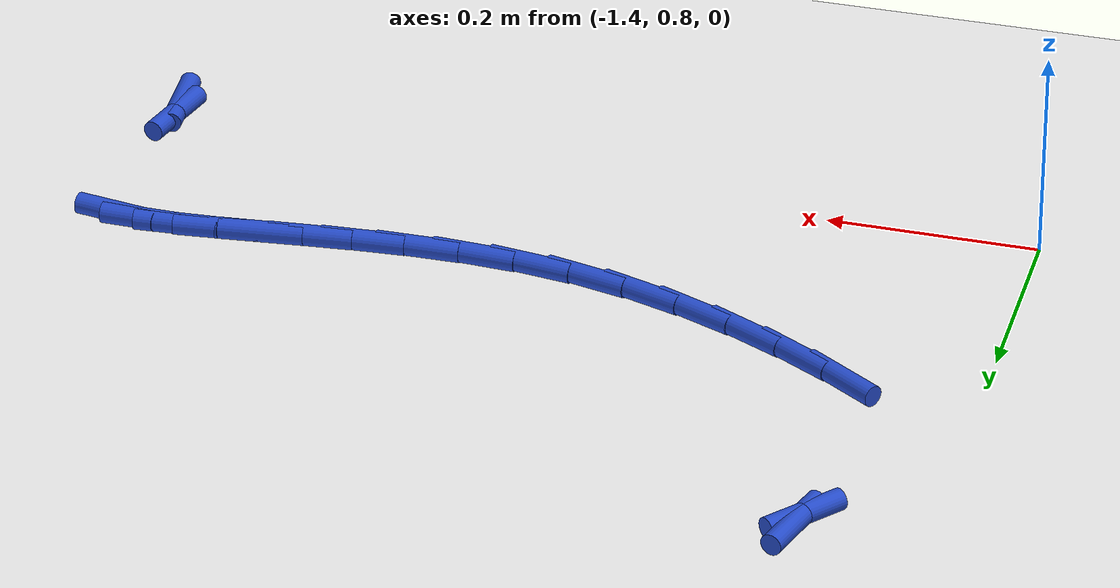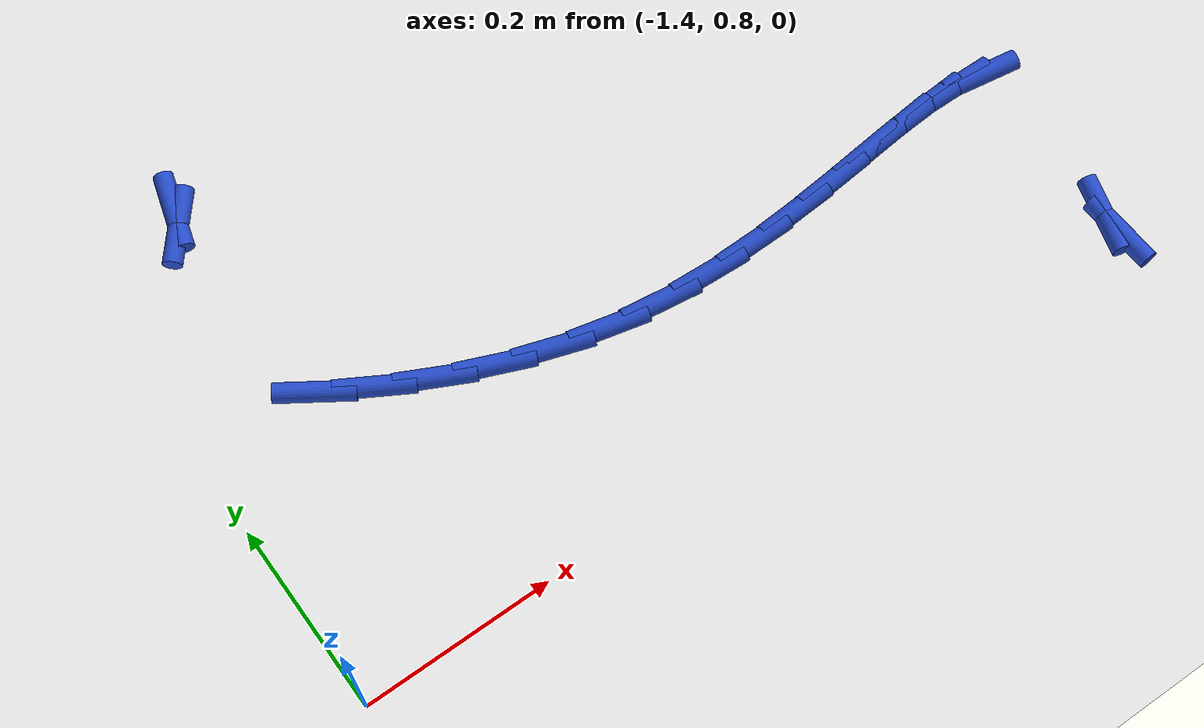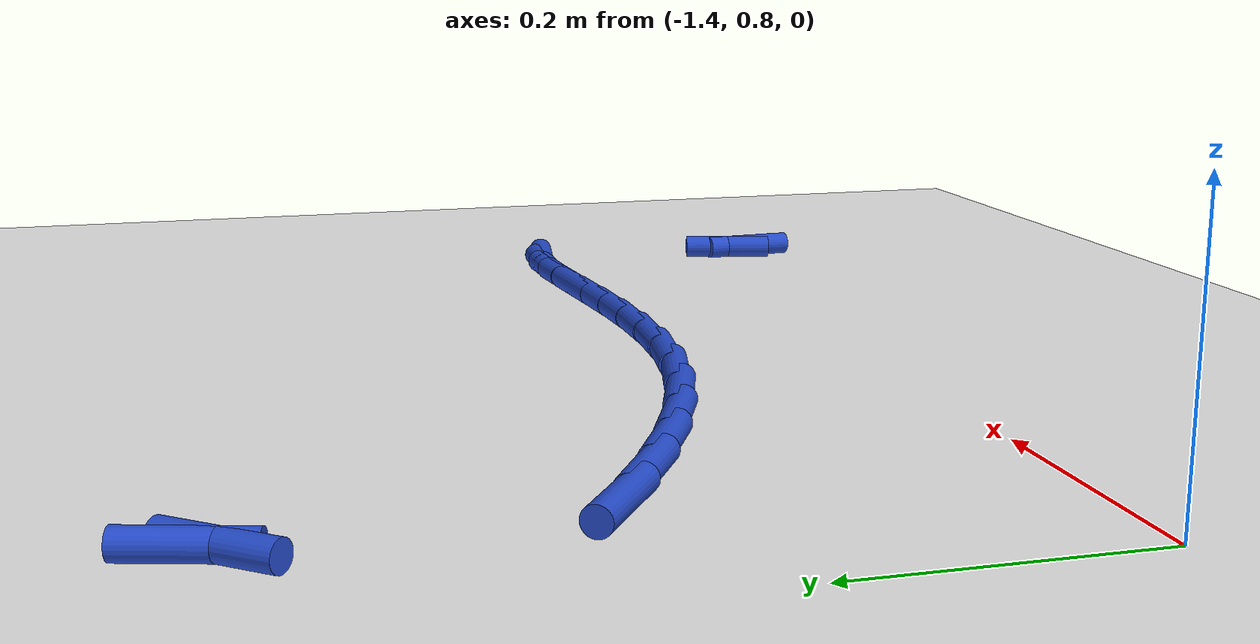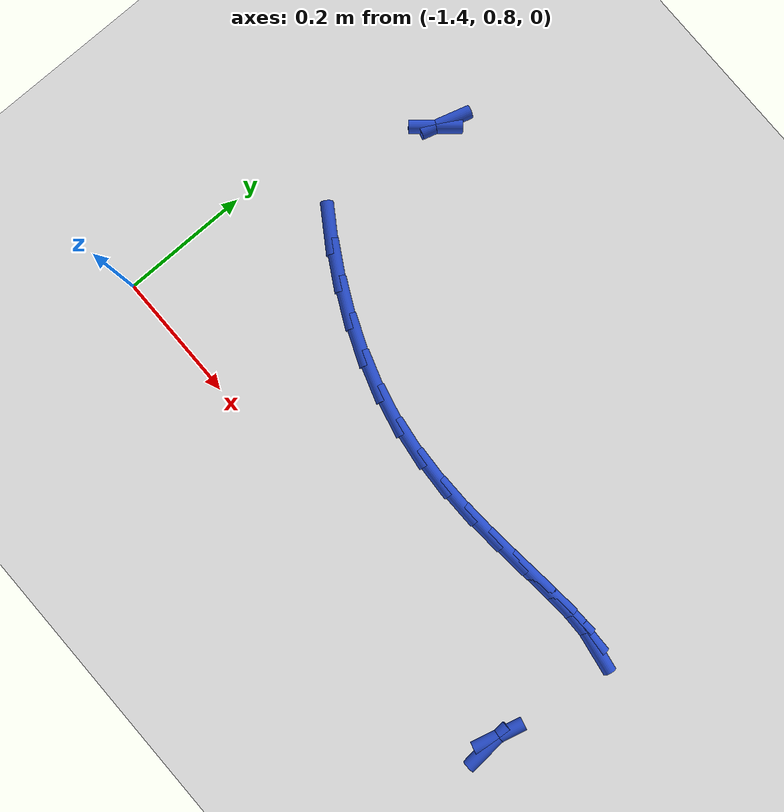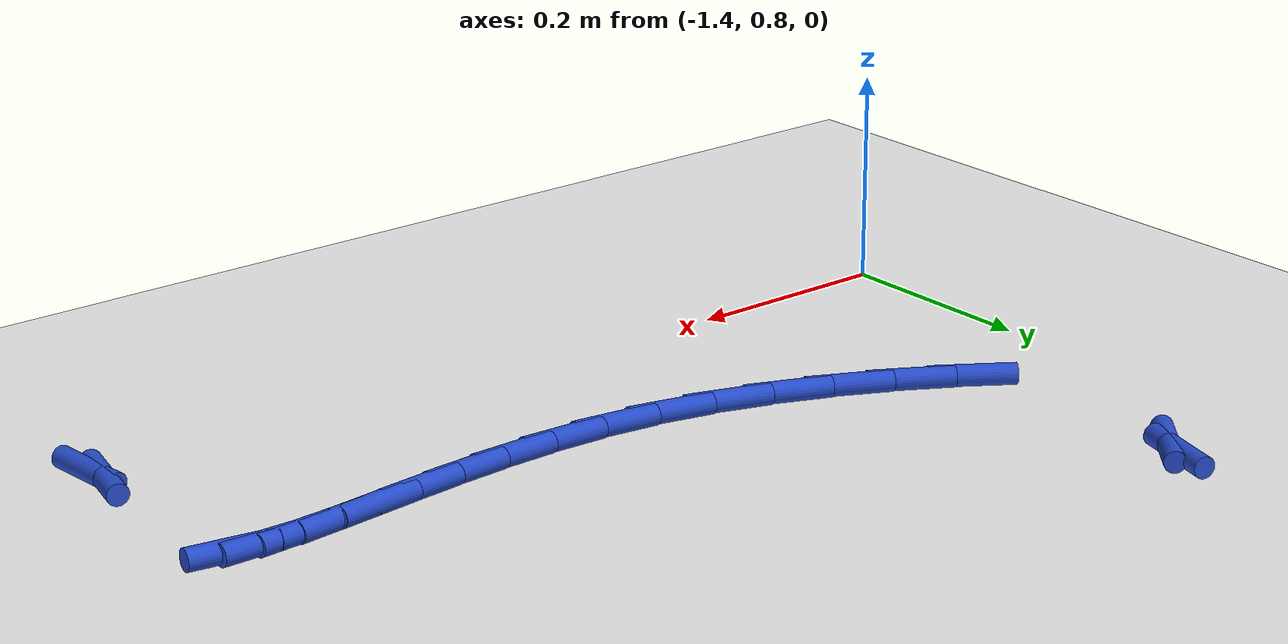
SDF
<sdf version="1.6">
 <world name="default">
  <model name="ground_plane">
   <static>1</static>
   <link name="link">
    <collision name="collision">
     <geometry><plane><normal>0 0 1</normal><size>100 100</size></plane></geometry>
     <surface><friction><ode><mu>100</mu><mu2>50</mu2></ode></friction></surface>
    </collision>
    <visual name="visual">
     <cast_shadows>0</cast_shadows>
     <geometry><plane><normal>0 0 1</normal><size>100 100</size></plane></geometry>
     <material>
      <script><uri>file://media/materials/scripts/gazebo.material</uri><name>Gazebo/WhiteGlow</name></script>
     </material>
    </visual>
   </link>
  </model>
  <model name="line">
   <link name="link_34">
    <pose>-0.5580923701969078 0.763494513922967 0.01 0 1.57 -1.4948324538092168</pose>
    <collision name="collision">
     <geometry><cylinder><radius>0.01</radius><length>0.08</length></cylinder></geometry>
    </collision>
    <visual name="visual">
     <material>
      <script><name>Gazebo/Blue</name><uri>file://media/materials/scripts/gazebo.material</uri></script>
     </material>
     <geometry><cylinder><radius>0.01</radius><length>0.08</length></cylinder></geometry>
    </visual>
   </link>
   <link name="link_35">
    <pose>-0.5597076829982736 0.7847178202460561 0.01 0 1.57 1.328714973944007</pose>
    <collision name="collision">
     <geometry><cylinder><radius>0.01</radius><length>0.08</length></cylinder></geometry>
    </collision>
    <visual name="visual">
     <material>
      <script><name>Gazebo/Blue</name><uri>file://media/materials/scripts/gazebo.material</uri></script>
     </material>
     <geometry><cylinder><radius>0.01</radius><length>0.08</length></cylinder></geometry>
    </visual>
   </link>
   <link name="link_42">
    <pose>-0.5646322320761914 0.9719019364678838 0.01 0 1.57 -0.1635095303750284</pose>
    <collision name="collision">
     <geometry><cylinder><radius>0.01</radius><length>0.08</length></cylinder></geometry>
    </collision>
    <visual name="visual">
     <material>
      <script><name>Gazebo/Blue</name><uri>file://media/materials/scripts/gazebo.material</uri></script>
     </material>
     <geometry><cylinder><radius>0.01</radius><length>0.08</length></cylinder></geometry>
    </visual>
   </link>
   <link name="link_43">
    <pose>-0.5914192939594306 0.9763213314684609 0.01 0 1.57 -0.016165628537023982</pose>
    <collision name="collision">
     <geometry><cylinder><radius>0.01</radius><length>0.08</length></cylinder></geometry>
    </collision>
    <visual name="visual">
     <material>
      <script><name>Gazebo/Blue</name><uri>file://media/materials/scripts/gazebo.material</uri></script>
     </material>
     <geometry><cylinder><radius>0.01</radius><length>0.08</length></cylinder></geometry>
    </visual>
   </link>
   <link name="link_44">
    <pose>-0.624020508663401 0.9768483965082254 0.01 0 1.57 0.06086672252184156</pose>
    <collision name="collision">
     <geometry><cylinder><radius>0.01</radius><length>0.08</length></cylinder></geometry>
    </collision>
    <visual name="visual">
     <material>
      <script><name>Gazebo/Blue</name><uri>file://media/materials/scripts/gazebo.material</uri></script>
     </material>
     <geometry><cylinder><radius>0.01</radius><length>0.08</length></cylinder></geometry>
    </visual>
   </link>
   <link name="link_45">
    <pose>-0.6617673035108715 0.9745480313529493 0.01 0 1.57 0.09592754155805806</pose>
    <collision name="collision">
     <geometry><cylinder><radius>0.01</radius><length>0.08</length></cylinder></geometry>
    </collision>
    <visual name="visual">
     <material>
      <script><name>Gazebo/Blue</name><uri>file://media/materials/scripts/gazebo.material</uri></script>
     </material>
     <geometry><cylinder><radius>0.01</radius><length>0.08</length></cylinder></geometry>
    </visual>
   </link>
   <link name="link_46">
    <pose>-0.7039911058246098 0.9704851357684028 0.01 0 1.57 0.10305088690284292</pose>
    <collision name="collision">
     <geometry><cylinder><radius>0.01</radius><length>0.08</length></cylinder></geometry>
    </collision>
    <visual name="visual">
     <material>
      <script><name>Gazebo/Blue</name><uri>file://media/materials/scripts/gazebo.material</uri></script>
     </material>
     <geometry><cylinder><radius>0.01</radius><length>0.08</length></cylinder></geometry>
    </visual>
   </link>
   <link name="link_47">
    <pose>-0.7500233429273853 0.9657246095203584 0.01 0 1.57 0.08910791375788486</pose>
    <collision name="collision">
     <geometry><cylinder><radius>0.01</radius><length>0.08</length></cylinder></geometry>
    </collision>
    <visual name="visual">
     <material>
      <script><name>Gazebo/Blue</name><uri>file://media/materials/scripts/gazebo.material</uri></script>
     </material>
     <geometry><cylinder><radius>0.01</radius><length>0.08</length></cylinder></geometry>
    </visual>
   </link>
   <link name="link_48">
    <pose>-0.7991954421419653 0.9613313523745861 0.01 0 1.57 0.05727450939299723</pose>
    <collision name="collision">
     <geometry><cylinder><radius>0.01</radius><length>0.08</length></cylinder></geometry>
    </collision>
    <visual name="visual">
     <material>
      <script><name>Gazebo/Blue</name><uri>file://media/materials/scripts/gazebo.material</uri></script>
     </material>
     <geometry><cylinder><radius>0.01</radius><length>0.08</length></cylinder></geometry>
    </visual>
   </link>
   <link name="link_49">
    <pose>-0.8508388307911182 0.9583702640968579 0.01 0 1.57 0.008681792285163832</pose>
    <collision name="collision">
     <geometry><cylinder><radius>0.01</radius><length>0.08</length></cylinder></geometry>
    </collision>
    <visual name="visual">
     <material>
      <script><name>Gazebo/Blue</name><uri>file://media/materials/scripts/gazebo.material</uri></script>
     </material>
     <geometry><cylinder><radius>0.01</radius><length>0.08</length></cylinder></geometry>
    </visual>
   </link>
   <link name="link_50">
    <pose>-0.9042849361976133 0.9579062444529449 0.01 0 1.57 -0.05669868445683849</pose>
    <collision name="collision">
     <geometry><cylinder><radius>0.01</radius><length>0.08</length></cylinder></geometry>
    </collision>
    <visual name="visual">
     <material>
      <script><name>Gazebo/Blue</name><uri>file://media/materials/scripts/gazebo.material</uri></script>
     </material>
     <geometry><cylinder><radius>0.01</radius><length>0.08</length></cylinder></geometry>
    </visual>
   </link>
   <link name="link_51">
    <pose>-0.9588651856842174 0.961004193208618 0.01 0 1.57 -0.1394208972350012</pose>
    <collision name="collision">
     <geometry><cylinder><radius>0.01</radius><length>0.08</length></cylinder></geometry>
    </collision>
    <visual name="visual">
     <material>
      <script><name>Gazebo/Blue</name><uri>file://media/materials/scripts/gazebo.material</uri></script>
     </material>
     <geometry><cylinder><radius>0.01</radius><length>0.08</length></cylinder></geometry>
    </visual>
   </link>
   <link name="link_52">
    <pose>-1.0139110183002287 0.9687288486594569 0.01 0 1.57 -0.23341070814844342</pose>
    <collision name="collision">
     <geometry><cylinder><radius>0.01</radius><length>0.08</length></cylinder></geometry>
    </collision>
    <visual name="visual">
     <material>
      <script><name>Gazebo/Blue</name><uri>file://media/materials/scripts/gazebo.material</uri></script>
     </material>
     <geometry><cylinder><radius>0.01</radius><length>0.08</length></cylinder></geometry>
    </visual>
   </link>
   <link name="link_53">
    <pose>-1.0687808262712903 0.9817738132958911 0.01 0 1.57 -0.31926257511083317</pose>
    <collision name="collision">
     <geometry><cylinder><radius>0.01</radius><length>0.08</length></cylinder></geometry>
    </collision>
    <visual name="visual">
     <material>
      <script><name>Gazebo/Blue</name><uri>file://media/materials/scripts/gazebo.material</uri></script>
     </material>
     <geometry><cylinder><radius>0.01</radius><length>0.08</length></cylinder></geometry>
    </visual>
   </link>
   <link name="link_54">
    <pose>-1.1229174532601016 0.9996698228766931 0.01 0 1.57 -0.3951856956327461</pose>
    <collision name="collision">
     <geometry><cylinder><radius>0.01</radius><length>0.08</length></cylinder></geometry>
    </collision>
    <visual name="visual">
     <material>
      <script><name>Gazebo/Blue</name><uri>file://media/materials/scripts/gazebo.material</uri></script>
     </material>
     <geometry><cylinder><radius>0.01</radius><length>0.08</length></cylinder></geometry>
    </visual>
   </link>
   <link name="link_55">
    <pose>-1.1757802390551937 1.0217204672812727 0.01 0 1.57 -0.4634082291257011</pose>
    <collision name="collision">
     <geometry><cylinder><radius>0.01</radius><length>0.08</length></cylinder></geometry>
    </collision>
    <visual name="visual">
     <material>
      <script><name>Gazebo/Blue</name><uri>file://media/materials/scripts/gazebo.material</uri></script>
     </material>
     <geometry><cylinder><radius>0.01</radius><length>0.08</length></cylinder></geometry>
    </visual>
   </link>
   <link name="link_56">
    <pose>-1.2268285234450989 1.0472293363890415 0.01 0 1.57 -0.5260242978912739</pose>
    <collision name="collision">
     <geometry><cylinder><radius>0.01</radius><length>0.08</length></cylinder></geometry>
    </collision>
    <visual name="visual">
     <material>
      <script><name>Gazebo/Blue</name><uri>file://media/materials/scripts/gazebo.material</uri></script>
     </material>
     <geometry><cylinder><radius>0.01</radius><length>0.08</length></cylinder></geometry>
    </visual>
   </link>
   <link name="link_57">
    <pose>-1.2755216462183478 1.0755000200794074 0.01 0 1.57 -0.5850422700894921</pose>
    <collision name="collision">
     <geometry><cylinder><radius>0.01</radius><length>0.08</length></cylinder></geometry>
    </collision>
    <visual name="visual">
     <material>
      <script><name>Gazebo/Blue</name><uri>file://media/materials/scripts/gazebo.material</uri></script>
     </material>
     <geometry><cylinder><radius>0.01</radius><length>0.08</length></cylinder></geometry>
    </visual>
   </link>
   <link name="link_76">
    <pose>-1.2863269607475458 1.3085160970882774 0.01 0 1.57 1.2843583826462976</pose>
    <collision name="collision">
     <geometry><cylinder><radius>0.01</radius><length>0.08</length></cylinder></geometry>
    </collision>
    <visual name="visual">
     <material>
      <script><name>Gazebo/Blue</name><uri>file://media/materials/scripts/gazebo.material</uri></script>
     </material>
     <geometry><cylinder><radius>0.01</radius><length>0.08</length></cylinder></geometry>
    </visual>
   </link>
   <link name="link_77">
    <pose>-1.2909130236133644 1.2929457170351872 0.01 0 1.57 0.8708377790693702</pose>
    <collision name="collision">
     <geometry><cylinder><radius>0.01</radius><length>0.08</length></cylinder></geometry>
    </collision>
    <visual name="visual">
     <material>
      <script><name>Gazebo/Blue</name><uri>file://media/materials/scripts/gazebo.material</uri></script>
     </material>
     <geometry><cylinder><radius>0.01</radius><length>0.08</length></cylinder></geometry>
    </visual>
   </link>
  </model>
 </world>
</sdf>
